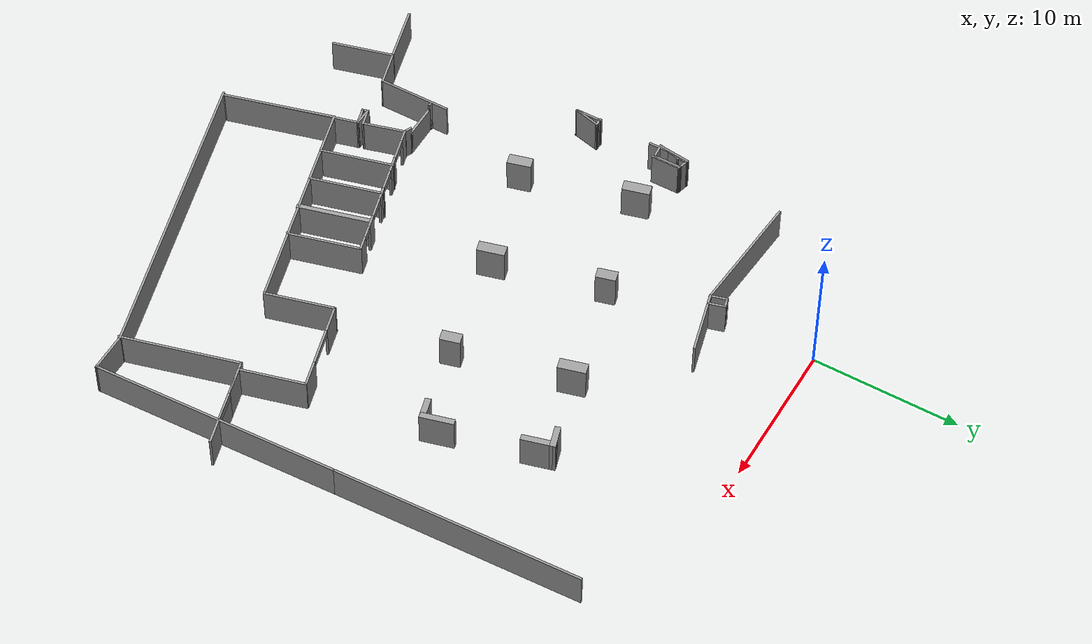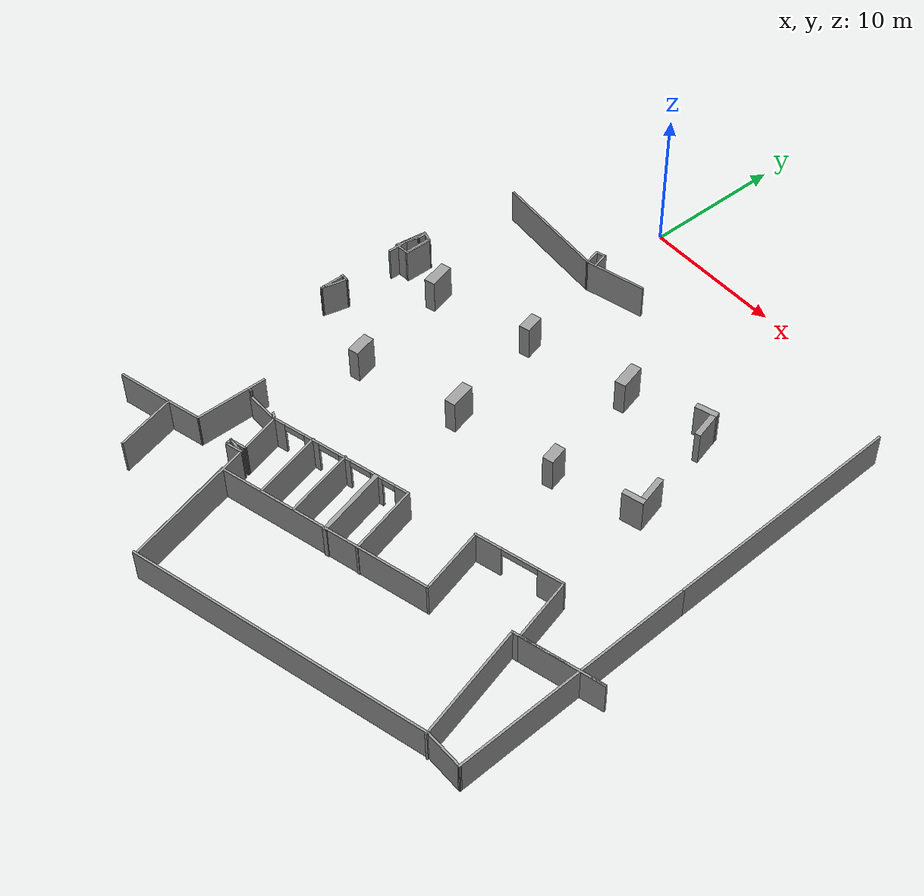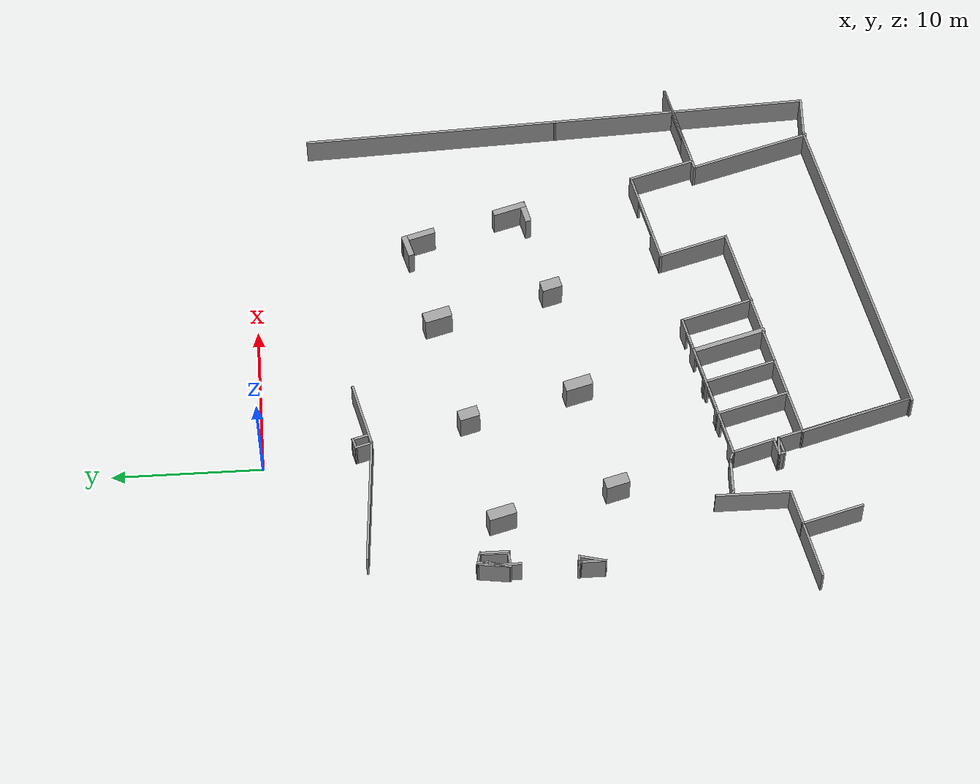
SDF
<sdf version="1.6">
 <model name="car_parking_underground_big_1">
  <pose>-9.36123 -7.37411 0 0 -0 0</pose>
  <link name="Door_12">
   <collision name="Door_12_Collision">
    <geometry><box><size>2.5 0.17 2</size></box></geometry>
    <pose>0 0 1 0 -0 0</pose>
   </collision>
   <visual name="Door_12_Visual">
    <pose>0 0 1 0 -0 0</pose>
    <geometry><box><size>2.5 0.17 2</size></box></geometry>
    <material>
     <script><uri>file://media/materials/scripts/gazebo.material</uri><name>Gazebo/Grey</name></script>
    </material>
   </visual>
   <pose>6.2291 -23.2173 0 0 -0 0</pose>
  </link>
  <link name="Wall_125">
   <collision name="Wall_125_Collision">
    <geometry><box><size>1.51034 0.4 2.5</size></box></geometry>
    <pose>0 0 1.25 0 -0 0</pose>
   </collision>
   <visual name="Wall_125_Visual">
    <pose>0 0 1.25 0 -0 0</pose>
    <geometry><box><size>1.51034 0.4 2.5</size></box></geometry>
    <material>
     <script><uri>file://media/materials/scripts/gazebo.material</uri><name>Gazebo/Grey</name></script>
     <ambient>1 1 1 1</ambient>
    </material>
    <meta><layer>0</layer></meta>
   </visual>
   <pose>24.1368 -2.87782 0 0 -0 0.29248</pose>
  </link>
  <link name="Wall_126">
   <collision name="Wall_126_Collision">
    <geometry><box><size>2.25 0.4 2.5</size></box></geometry>
    <pose>0 0 1.25 0 -0 0</pose>
   </collision>
   <visual name="Wall_126_Visual">
    <pose>0 0 1.25 0 -0 0</pose>
    <geometry><box><size>2.25 0.4 2.5</size></box></geometry>
    <material>
     <script><uri>file://media/materials/scripts/gazebo.material</uri><name>Gazebo/Grey</name></script>
     <ambient>1 1 1 1</ambient>
    </material>
    <meta><layer>0</layer></meta>
   </visual>
   <pose>24.9078 -3.61123 0 0 -0 -1.309</pose>
  </link>
  <link name="Wall_129">
   <collision name="Wall_129_Collision">
    <geometry><box><size>2.25008 0.4 2.5</size></box></geometry>
    <pose>0 0 1.25 0 -0 0</pose>
   </collision>
   <visual name="Wall_129_Visual">
    <pose>0 0 1.25 0 -0 0</pose>
    <geometry><box><size>2.25008 0.4 2.5</size></box></geometry>
    <material>
     <script><uri>file://media/materials/scripts/gazebo.material</uri><name>Gazebo/Grey</name></script>
     <ambient>1 1 1 1</ambient>
    </material>
    <meta><layer>0</layer></meta>
   </visual>
   <pose>26.5537 -9.80539 0 0 -0 -1.30891</pose>
  </link>
  <link name="Wall_130">
   <collision name="Wall_130_Collision">
    <geometry><box><size>1.5001 0.4 2.5</size></box></geometry>
    <pose>0 0 1.25 0 -0 0</pose>
   </collision>
   <visual name="Wall_130_Visual">
    <pose>0 0 1.25 0 -0 0</pose>
    <geometry><box><size>1.5001 0.4 2.5</size></box></geometry>
    <material>
     <script><uri>file://media/materials/scripts/gazebo.material</uri><name>Gazebo/Grey</name></script>
     <ambient>1 1 1 1</ambient>
    </material>
    <meta><layer>0</layer></meta>
   </visual>
   <pose>26.2617 -10.8414 0 0 -0 -2.87964</pose>
  </link>
  <link name="Wall_132">
   <collision name="Wall_132_Collision">
    <geometry><box><size>1.84932 0.75 2.5</size></box></geometry>
    <pose>0 0 1.25 0 -0 0</pose>
   </collision>
   <visual name="Wall_132_Visual">
    <pose>0 0 1.25 0 -0 0</pose>
    <geometry><box><size>1.84932 0.75 2.5</size></box></geometry>
    <material>
     <script><uri>file://media/materials/scripts/gazebo.material</uri><name>Gazebo/Grey</name></script>
     <ambient>1 1 1 1</ambient>
    </material>
    <meta><layer>0</layer></meta>
   </visual>
   <pose>18.9252 -4.58189 0 0 -0 1.8321</pose>
  </link>
  <link name="Wall_134">
   <collision name="Wall_134_Collision">
    <geometry><box><size>1.35015 0.75 2.5</size></box></geometry>
    <pose>0 0 1.25 0 -0 0</pose>
   </collision>
   <visual name="Wall_134_Visual">
    <pose>0 0 1.25 0 -0 0</pose>
    <geometry><box><size>1.35015 0.75 2.5</size></box></geometry>
    <material>
     <script><uri>file://media/materials/scripts/gazebo.material</uri><name>Gazebo/Grey</name></script>
     <ambient>1 1 1 1</ambient>
    </material>
    <meta><layer>0</layer></meta>
   </visual>
   <pose>20.7487 -12.2459 0 0 -0 1.83194</pose>
  </link>
  <link name="Wall_136">
   <collision name="Wall_136_Collision">
    <geometry><box><size>1.8504 0.75 2.5</size></box></geometry>
    <pose>0 0 1.25 0 -0 0</pose>
   </collision>
   <visual name="Wall_136_Visual">
    <pose>0 0 1.25 0 -0 0</pose>
    <geometry><box><size>1.8504 0.75 2.5</size></box></geometry>
    <material>
     <script><uri>file://media/materials/scripts/gazebo.material</uri><name>Gazebo/Grey</name></script>
     <ambient>1 1 1 1</ambient>
    </material>
    <meta><layer>0</layer></meta>
   </visual>
   <pose>13.4057 -13.5944 0 0 -0 -1.30885</pose>
  </link>
  <link name="Wall_138">
   <collision name="Wall_138_Collision">
    <geometry><box><size>1.35061 0.75 2.5</size></box></geometry>
    <pose>0 0 1.25 0 -0 0</pose>
   </collision>
   <visual name="Wall_138_Visual">
    <pose>0 0 1.25 0 -0 0</pose>
    <geometry><box><size>1.35061 0.75 2.5</size></box></geometry>
    <material>
     <script><uri>file://media/materials/scripts/gazebo.material</uri><name>Gazebo/Grey</name></script>
     <ambient>1 1 1 1</ambient>
    </material>
    <meta><layer>0</layer></meta>
   </visual>
   <pose>11.6025 -6.26525 0 0 -0 1.83354</pose>
  </link>
  <link name="Wall_140">
   <collision name="Wall_140_Collision">
    <geometry><box><size>1.85027 0.75 2.5</size></box></geometry>
    <pose>0 0 1.25 0 -0 0</pose>
   </collision>
   <visual name="Wall_140_Visual">
    <pose>0 0 1.25 0 -0 0</pose>
    <geometry><box><size>1.85027 0.75 2.5</size></box></geometry>
    <material>
     <script><uri>file://media/materials/scripts/gazebo.material</uri><name>Gazebo/Grey</name></script>
     <ambient>1 1 1 1</ambient>
    </material>
    <meta><layer>0</layer></meta>
   </visual>
   <pose>4.43473 -8.03639 0 0 -0 -1.30885</pose>
  </link>
  <link name="Wall_142">
   <collision name="Wall_142_Collision">
    <geometry><box><size>0.75 0.15 2.5</size></box></geometry>
    <pose>0 0 1.25 0 -0 0</pose>
   </collision>
   <visual name="Wall_142_Visual">
    <pose>0 0 1.25 0 -0 0</pose>
    <geometry><box><size>0.75 0.15 2.5</size></box></geometry>
    <material>
     <script><uri>file://media/materials/scripts/gazebo.material</uri><name>Gazebo/Grey</name></script>
     <ambient>1 1 1 1</ambient>
    </material>
    <meta><layer>0</layer></meta>
   </visual>
   <pose>0.950509 -6.60902 0 0 -0 -1.5708</pose>
  </link>
  <link name="Wall_143">
   <collision name="Wall_143_Collision">
    <geometry><box><size>1 0.15 2.5</size></box></geometry>
    <pose>0 0 1.25 0 -0 0</pose>
   </collision>
   <visual name="Wall_143_Visual">
    <pose>0 0 1.25 0 -0 0</pose>
    <geometry><box><size>1 0.15 2.5</size></box></geometry>
    <material>
     <script><uri>file://media/materials/scripts/gazebo.material</uri><name>Gazebo/Grey</name></script>
     <ambient>1 1 1 1</ambient>
    </material>
    <meta><layer>0</layer></meta>
   </visual>
   <pose>0.840511 -7.31954 0 0 -0 -1.8326</pose>
  </link>
  <link name="Wall_144">
   <collision name="Wall_144_Collision">
    <geometry><box><size>1.5 0.15 2.5</size></box></geometry>
    <pose>0 0 1.25 0 -0 0</pose>
   </collision>
   <visual name="Wall_144_Visual">
    <pose>0 0 1.25 0 -0 0</pose>
    <geometry><box><size>1.5 0.15 2.5</size></box></geometry>
    <material>
     <script><uri>file://media/materials/scripts/gazebo.material</uri><name>Gazebo/Grey</name></script>
     <ambient>1 1 1 1</ambient>
    </material>
    <meta><layer>0</layer></meta>
   </visual>
   <pose>0.730513 -8.40506 0 0 -0 -1.5708</pose>
  </link>
  <link name="Wall_152">
   <collision name="Wall_152_Collision">
    <geometry><box><size>1.75 0.15 2.5</size></box></geometry>
    <pose>0 0 1.25 0 -0 0</pose>
   </collision>
   <visual name="Wall_152_Visual">
    <pose>0 0 1.25 0 -0 0</pose>
    <geometry><box><size>1.75 0.15 2.5</size></box></geometry>
    <material>
     <script><uri>file://media/materials/scripts/gazebo.material</uri><name>Gazebo/Grey</name></script>
     <ambient>1 1 1 1</ambient>
    </material>
    <meta><layer>0</layer></meta>
   </visual>
   <pose>0.629189 -13.7667 0 0 -0 1.5708</pose>
  </link>
  <link name="Wall_153">
   <collision name="Wall_153_Collision">
    <geometry><box><size>0.25 0.15 2.5</size></box></geometry>
    <pose>0 0 1.25 0 -0 0</pose>
   </collision>
   <visual name="Wall_153_Visual">
    <pose>0 0 1.25 0 -0 0</pose>
    <geometry><box><size>0.25 0.15 2.5</size></box></geometry>
    <material>
     <script><uri>file://media/materials/scripts/gazebo.material</uri><name>Gazebo/Grey</name></script>
     <ambient>1 1 1 1</ambient>
    </material>
    <meta><layer>0</layer></meta>
   </visual>
   <pose>0.654189 -12.9234 0 0 -0 1.0472</pose>
  </link>
  <link name="Wall_154">
   <collision name="Wall_154_Collision">
    <geometry><box><size>0.25 0.15 2.5</size></box></geometry>
    <pose>0 0 1.25 0 -0 0</pose>
   </collision>
   <visual name="Wall_154_Visual">
    <pose>0 0 1.25 0 -0 0</pose>
    <geometry><box><size>0.25 0.15 2.5</size></box></geometry>
    <material>
     <script><uri>file://media/materials/scripts/gazebo.material</uri><name>Gazebo/Grey</name></script>
     <ambient>1 1 1 1</ambient>
    </material>
    <meta><layer>0</layer></meta>
   </visual>
   <pose>0.630893 -12.8672 0 0 -0 2.87979</pose>
  </link>
  <link name="Wall_157">
   <collision name="Wall_157_Collision">
    <geometry><box><size>2.27727 0.15 2.5</size></box></geometry>
    <pose>0 0 1.25 0 -0 0</pose>
   </collision>
   <visual name="Wall_157_Visual">
    <pose>0 0 1.25 0 -0 0</pose>
    <geometry><box><size>2.27727 0.15 2.5</size></box></geometry>
    <material>
     <script><uri>file://media/materials/scripts/gazebo.material</uri><name>Gazebo/Grey</name></script>
     <ambient>1 1 1 1</ambient>
    </material>
    <meta><layer>0</layer></meta>
   </visual>
   <pose>0.766553 -7.35663 0 0 -0 1.39697</pose>
  </link>
  <link name="Wall_158">
   <collision name="Wall_158_Collision">
    <geometry><box><size>0.75 0.15 2.5</size></box></geometry>
    <pose>0 0 1.25 0 -0 0</pose>
   </collision>
   <visual name="Wall_158_Visual">
    <pose>0 0 1.25 0 -0 0</pose>
    <geometry><box><size>0.75 0.15 2.5</size></box></geometry>
    <material>
     <script><uri>file://media/materials/scripts/gazebo.material</uri><name>Gazebo/Grey</name></script>
     <ambient>1 1 1 1</ambient>
    </material>
    <meta><layer>0</layer></meta>
   </visual>
   <pose>1.24029 -6.38666 0 0 -0 -0.261799</pose>
  </link>
  <link name="Wall_159">
   <collision name="Wall_159_Collision">
    <geometry><box><size>2 0.15 2.5</size></box></geometry>
    <pose>0 0 1.25 0 -0 0</pose>
   </collision>
   <visual name="Wall_159_Visual">
    <pose>0 0 1.25 0 -0 0</pose>
    <geometry><box><size>2 0.15 2.5</size></box></geometry>
    <material>
     <script><uri>file://media/materials/scripts/gazebo.material</uri><name>Gazebo/Grey</name></script>
     <ambient>1 1 1 1</ambient>
    </material>
    <meta><layer>0</layer></meta>
   </visual>
   <pose>1.53007 -7.38931 0 0 -0 -1.5708</pose>
  </link>
  <link name="Wall_160">
   <collision name="Wall_160_Collision">
    <geometry><box><size>1.10173 0.15 2.5</size></box></geometry>
    <pose>0 0 1.25 0 -0 0</pose>
   </collision>
   <visual name="Wall_160_Visual">
    <pose>0 0 1.25 0 -0 0</pose>
    <geometry><box><size>1.10173 0.15 2.5</size></box></geometry>
    <material>
     <script><uri>file://media/materials/scripts/gazebo.material</uri><name>Gazebo/Grey</name></script>
     <ambient>1 1 1 1</ambient>
    </material>
    <meta><layer>0</layer></meta>
   </visual>
   <pose>1.05633 -8.35927 0 0 -0 -3.04697</pose>
  </link>
  <link name="Wall_163">
   <collision name="Wall_163_Collision">
    <geometry><box><size>0.15 0.15 2.5</size></box></geometry>
    <pose>0 0 1.25 0 -0 0</pose>
   </collision>
   <visual name="Wall_163_Visual">
    <pose>0 0 1.25 0 -0 0</pose>
    <geometry><box><size>0.15 0.15 2.5</size></box></geometry>
    <material>
     <script><uri>file://media/materials/scripts/gazebo.material</uri><name>Gazebo/Grey</name></script>
     <ambient>1 1 1 1</ambient>
    </material>
    <meta><layer>0</layer></meta>
   </visual>
   <pose>0.679189 -12.8801 0 0 -0 0</pose>
  </link>
  <link name="Wall_164">
   <collision name="Wall_164_Collision">
    <geometry><box><size>0.5 0.15 2.5</size></box></geometry>
    <pose>0 0 1.25 0 -0 0</pose>
   </collision>
   <visual name="Wall_164_Visual">
    <pose>0 0 1.25 0 -0 0</pose>
    <geometry><box><size>0.5 0.15 2.5</size></box></geometry>
    <material>
     <script><uri>file://media/materials/scripts/gazebo.material</uri><name>Gazebo/Grey</name></script>
     <ambient>1 1 1 1</ambient>
    </material>
    <meta><layer>0</layer></meta>
   </visual>
   <pose>0.854189 -12.8801 0 0 -0 0</pose>
  </link>
  <link name="Wall_165">
   <collision name="Wall_165_Collision">
    <geometry><box><size>1.88339 0.15 2.5</size></box></geometry>
    <pose>0 0 1.25 0 -0 0</pose>
   </collision>
   <visual name="Wall_165_Visual">
    <pose>0 0 1.25 0 -0 0</pose>
    <geometry><box><size>1.88339 0.15 2.5</size></box></geometry>
    <material>
     <script><uri>file://media/materials/scripts/gazebo.material</uri><name>Gazebo/Grey</name></script>
     <ambient>1 1 1 1</ambient>
    </material>
    <meta><layer>0</layer></meta>
   </visual>
   <pose>0.829189 -13.7234 0 0 -0 -1.80366</pose>
  </link>
  <link name="Wall_167">
   <collision name="Wall_167_Collision">
    <geometry><box><size>0.25 0.15 2.5</size></box></geometry>
    <pose>0 0 1.25 0 -0 0</pose>
   </collision>
   <visual name="Wall_167_Visual">
    <pose>0 0 1.25 0 -0 0</pose>
    <geometry><box><size>0.25 0.15 2.5</size></box></geometry>
    <material>
     <script><uri>file://media/materials/scripts/gazebo.material</uri><name>Gazebo/Grey</name></script>
     <ambient>1 1 1 1</ambient>
    </material>
    <meta><layer>0</layer></meta>
   </visual>
   <pose>0.902213 -6.29608 0 0 -0 2.87979</pose>
  </link>
  <link name="Wall_168">
   <collision name="Wall_168_Collision">
    <geometry><box><size>2.28838 0.15 2.5</size></box></geometry>
    <pose>0 0 1.25 0 -0 0</pose>
   </collision>
   <visual name="Wall_168_Visual">
    <pose>0 0 1.25 0 -0 0</pose>
    <geometry><box><size>2.28838 0.15 2.5</size></box></geometry>
    <material>
     <script><uri>file://media/materials/scripts/gazebo.material</uri><name>Gazebo/Grey</name></script>
     <ambient>1 1 1 1</ambient>
    </material>
    <meta><layer>0</layer></meta>
   </visual>
   <pose>0.718256 -7.34368 0 0 -0 -1.69802</pose>
  </link>
  <link name="Wall_171">
   <collision name="Wall_171_Collision">
    <geometry><box><size>0.25 0.15 2.5</size></box></geometry>
    <pose>0 0 1.25 0 -0 0</pose>
   </collision>
   <visual name="Wall_171_Visual">
    <pose>0 0 1.25 0 -0 0</pose>
    <geometry><box><size>0.25 0.15 2.5</size></box></geometry>
    <material>
     <script><uri>file://media/materials/scripts/gazebo.material</uri><name>Gazebo/Grey</name></script>
     <ambient>1 1 1 1</ambient>
    </material>
    <meta><layer>0</layer></meta>
   </visual>
   <pose>1.57337 -6.48931 0 0 -0 -0.523599</pose>
  </link>
  <link name="Wall_172">
   <collision name="Wall_172_Collision">
    <geometry><box><size>2 0.15 2.5</size></box></geometry>
    <pose>0 0 1.25 0 -0 0</pose>
   </collision>
   <visual name="Wall_172_Visual">
    <pose>0 0 1.25 0 -0 0</pose>
    <geometry><box><size>2 0.15 2.5</size></box></geometry>
    <material>
     <script><uri>file://media/materials/scripts/gazebo.material</uri><name>Gazebo/Grey</name></script>
     <ambient>1 1 1 1</ambient>
    </material>
    <meta><layer>0</layer></meta>
   </visual>
   <pose>1.61667 -7.43931 0 0 -0 -1.5708</pose>
  </link>
  <link name="Wall_174">
   <collision name="Wall_174_Collision">
    <geometry><box><size>1.59944 0.75 2.5</size></box></geometry>
    <pose>0 0 1.25 0 -0 0</pose>
   </collision>
   <visual name="Wall_174_Visual">
    <pose>0 0 1.25 0 -0 0</pose>
    <geometry><box><size>1.59944 0.75 2.5</size></box></geometry>
    <material>
     <script><uri>file://media/materials/scripts/gazebo.material</uri><name>Gazebo/Grey</name></script>
     <ambient>1 1 1 1</ambient>
    </material>
    <meta><layer>0</layer></meta>
   </visual>
   <pose>6.23223 -15.6554 0 0 -0 -1.30898</pose>
  </link>
  <link name="Wall_26">
   <collision name="Wall_26_Collision">
    <geometry><box><size>8.36661 0.15 2.5</size></box></geometry>
    <pose>0 0 1.25 0 -0 0</pose>
   </collision>
   <visual name="Wall_26_Visual">
    <pose>0 0 1.25 0 -0 0</pose>
    <geometry><box><size>8.36661 0.15 2.5</size></box></geometry>
    <material>
     <script><uri>file://media/materials/scripts/gazebo.material</uri><name>Gazebo/Grey</name></script>
     <ambient>1 1 1 1</ambient>
    </material>
    <meta><layer>0</layer></meta>
   </visual>
   <pose>5.74294 0.498476 0 0 -0 -0.077832</pose>
  </link>
  <link name="Wall_27">
   <collision name="Wall_27_Collision">
    <geometry><box><size>4.35351 0.15 2.5</size></box></geometry>
    <pose>0 0 1.25 0 -0 0</pose>
   </collision>
   <visual name="Wall_27_Visual">
    <pose>0 0 1.25 0 -0 0</pose>
    <geometry><box><size>4.35351 0.15 2.5</size></box></geometry>
    <material>
     <script><uri>file://media/materials/scripts/gazebo.material</uri><name>Gazebo/Grey</name></script>
     <ambient>1 1 1 1</ambient>
    </material>
    <meta><layer>0</layer></meta>
   </visual>
   <pose>11.8725 0.70962 0 0 -0 0.255207</pose>
  </link>
  <link name="Wall_465">
   <collision name="Wall_465_Collision">
    <geometry><box><size>0.5 0.15 2.5</size></box></geometry>
    <pose>0 0 1.25 0 -0 0</pose>
   </collision>
   <visual name="Wall_465_Visual">
    <pose>0 0 1.25 0 -0 0</pose>
    <geometry><box><size>0.5 0.15 2.5</size></box></geometry>
    <material>
     <script><uri>file://media/materials/scripts/gazebo.material</uri><name>Gazebo/Grey</name></script>
     <ambient>1 1 1 1</ambient>
    </material>
    <meta><layer>0</layer></meta>
   </visual>
   <pose>7.57373 -26.5683 0 0 -0 -1.309</pose>
  </link>
  <link name="Wall_466">
   <collision name="Wall_466_Collision">
    <geometry><box><size>1.25 0.15 2.5</size></box></geometry>
    <pose>0 0 1.25 0 -0 0</pose>
   </collision>
   <visual name="Wall_466_Visual">
    <pose>0 0 1.25 0 -0 0</pose>
    <geometry><box><size>1.25 0.15 2.5</size></box></geometry>
    <material>
     <script><uri>file://media/materials/scripts/gazebo.material</uri><name>Gazebo/Grey</name></script>
     <ambient>1 1 1 1</ambient>
    </material>
    <meta><layer>0</layer></meta>
   </visual>
   <pose>8.15028 -26.595 0 0 -0 0.261799</pose>
  </link>
  <link name="Wall_58">
   <pose>25.3947 -18.9136 0 0 -0 0.261799</pose>
   <visual name="Wall_58_Visual_0">
    <pose>-2.17076 0 1.25 0 -0 0</pose>
    <geometry><box><size>1.90848 0.15 2.5</size></box></geometry>
    <material>
     <script><uri>file://media/materials/scripts/gazebo.material</uri><name>Gazebo/Grey</name></script>
     <ambient>1 1 1 1</ambient>
    </material>
    <meta><layer>0</layer></meta>
   </visual>
   <collision name="Wall_58_Collision_0">
    <geometry><box><size>1.90848 0.15 2.5</size></box></geometry>
    <pose>-2.17076 0 1.25 0 -0 0</pose>
   </collision>
   <visual name="Wall_58_Visual_1">
    <pose>2.20424 0 1.25 0 -0 0</pose>
    <geometry><box><size>1.84152 0.15 2.5</size></box></geometry>
    <material>
     <script><uri>file://media/materials/scripts/gazebo.material</uri><name>Gazebo/Grey</name></script>
     <ambient>1 1 1 1</ambient>
    </material>
    <meta><layer>0</layer></meta>
   </visual>
   <collision name="Wall_58_Collision_1">
    <geometry><box><size>1.84152 0.15 2.5</size></box></geometry>
    <pose>2.20424 0 1.25 0 -0 0</pose>
   </collision>
   <visual name="Wall_58_Visual_2">
    <pose>0.03348 0 2.25 0 -0 0</pose>
    <geometry><box><size>2.5 0.15 0.5</size></box></geometry>
    <material>
     <script><uri>file://media/materials/scripts/gazebo.material</uri><name>Gazebo/Grey</name></script>
     <ambient>1 1 1 1</ambient>
    </material>
    <meta><layer>0</layer></meta>
   </visual>
   <collision name="Wall_58_Collision_2">
    <geometry><box><size>2.5 0.15 0.5</size></box></geometry>
    <pose>0.03348 0 2.25 0 -0 0</pose>
   </collision>
  </link>
  <link name="Wall_586">
   <collision name="Wall_586_Collision">
    <geometry><box><size>1.23523 0.15 2.5</size></box></geometry>
    <pose>0 0 1.25 0 -0 0</pose>
   </collision>
   <visual name="Wall_586_Visual">
    <pose>0 0 1.25 0 -0 0</pose>
    <geometry><box><size>1.23523 0.15 2.5</size></box></geometry>
    <material>
     <script><uri>file://media/materials/scripts/gazebo.material</uri><name>Gazebo/Grey</name></script>
     <ambient>1 1 1 1</ambient>
    </material>
    <meta><layer>0</layer></meta>
   </visual>
   <pose>9.69645 0.702652 0 0 -0 1.83624</pose>
  </link>
  <link name="Wall_587">
   <collision name="Wall_587_Collision">
    <geometry><box><size>0.75 0.15 2.5</size></box></geometry>
    <pose>0 0 1.25 0 -0 0</pose>
   </collision>
   <visual name="Wall_587_Visual">
    <pose>0 0 1.25 0 -0 0</pose>
    <geometry><box><size>0.75 0.15 2.5</size></box></geometry>
    <material>
     <script><uri>file://media/materials/scripts/gazebo.material</uri><name>Gazebo/Grey</name></script>
     <ambient>1 1 1 1</ambient>
    </material>
    <meta><layer>0</layer></meta>
   </visual>
   <pose>9.84388 1.30391 0 0 -0 0.261799</pose>
  </link>
  <link name="Wall_588">
   <collision name="Wall_588_Collision">
    <geometry><box><size>1.25 0.15 2.5</size></box></geometry>
    <pose>0 0 1.25 0 -0 0</pose>
   </collision>
   <visual name="Wall_588_Visual">
    <pose>0 0 1.25 0 -0 0</pose>
    <geometry><box><size>1.25 0.15 2.5</size></box></geometry>
    <material>
     <script><uri>file://media/materials/scripts/gazebo.material</uri><name>Gazebo/Grey</name></script>
     <ambient>1 1 1 1</ambient>
    </material>
    <meta><layer>0</layer></meta>
   </visual>
   <pose>10.276 0.865592 0 0 -0 -1.309</pose>
  </link>
  <link name="Wall_59">
   <collision name="Wall_59_Collision">
    <geometry><box><size>4.5 0.15 2.5</size></box></geometry>
    <pose>0 0 1.25 0 -0 0</pose>
   </collision>
   <visual name="Wall_59_Visual">
    <pose>0 0 1.25 0 -0 0</pose>
    <geometry><box><size>4.5 0.15 2.5</size></box></geometry>
    <material>
     <script><uri>file://media/materials/scripts/gazebo.material</uri><name>Gazebo/Grey</name></script>
     <ambient>1 1 1 1</ambient>
    </material>
    <meta><layer>0</layer></meta>
   </visual>
   <pose>28.9037 -20.2251 0 0 -0 -1.309</pose>
  </link>
  <link name="Wall_60">
   <collision name="Wall_60_Collision">
    <geometry><box><size>5.75 0.15 2.5</size></box></geometry>
    <pose>0 0 1.25 0 -0 0</pose>
   </collision>
   <visual name="Wall_60_Visual">
    <pose>0 0 1.25 0 -0 0</pose>
    <geometry><box><size>5.75 0.15 2.5</size></box></geometry>
    <material>
     <script><uri>file://media/materials/scripts/gazebo.material</uri><name>Gazebo/Grey</name></script>
     <ambient>1 1 1 1</ambient>
    </material>
    <meta><layer>0</layer></meta>
   </visual>
   <pose>32.1712 -21.6013 0 0 -0 0.261799</pose>
  </link>
  <link name="Wall_61">
   <pose>31.9297 -21.666 0 0 -0 -2.87979</pose>
   <visual name="Wall_61_Visual_0">
    <pose>-2.23536 0 1.25 0 -0 0</pose>
    <geometry><box><size>1.77929 0.15 2.5</size></box></geometry>
    <material>
     <script><uri>file://media/materials/scripts/gazebo.material</uri><name>Gazebo/Grey</name></script>
     <ambient>1 1 1 1</ambient>
    </material>
    <meta><layer>0</layer></meta>
   </visual>
   <collision name="Wall_61_Collision_0">
    <geometry><box><size>1.77929 0.15 2.5</size></box></geometry>
    <pose>-2.23536 0 1.25 0 -0 0</pose>
   </collision>
   <visual name="Wall_61_Visual_1">
    <pose>1.88964 0 1.25 0 -0 0</pose>
    <geometry><box><size>2.47072 0.15 2.5</size></box></geometry>
    <material>
     <script><uri>file://media/materials/scripts/gazebo.material</uri><name>Gazebo/Grey</name></script>
     <ambient>1 1 1 1</ambient>
    </material>
    <meta><layer>0</layer></meta>
   </visual>
   <collision name="Wall_61_Collision_1">
    <geometry><box><size>2.47072 0.15 2.5</size></box></geometry>
    <pose>1.88964 0 1.25 0 -0 0</pose>
   </collision>
   <visual name="Wall_61_Visual_2">
    <pose>-0.345715 0 2.25 0 -0 0</pose>
    <geometry><box><size>2 0.15 0.5</size></box></geometry>
    <material>
     <script><uri>file://media/materials/scripts/gazebo.material</uri><name>Gazebo/Grey</name></script>
     <ambient>1 1 1 1</ambient>
    </material>
    <meta><layer>0</layer></meta>
   </visual>
   <collision name="Wall_61_Collision_2">
    <geometry><box><size>2 0.15 0.5</size></box></geometry>
    <pose>-0.345715 0 2.25 0 -0 0</pose>
   </collision>
  </link>
  <link name="Wall_62">
   <collision name="Wall_62_Collision">
    <geometry><box><size>8 0.15 2.5</size></box></geometry>
    <pose>0 0 1.25 0 -0 0</pose>
   </collision>
   <visual name="Wall_62_Visual">
    <pose>0 0 1.25 0 -0 0</pose>
    <geometry><box><size>8 0.15 2.5</size></box></geometry>
    <material>
     <script><uri>file://media/materials/scripts/gazebo.material</uri><name>Gazebo/Grey</name></script>
     <ambient>1 1 1 1</ambient>
    </material>
    <meta><layer>0</layer></meta>
   </visual>
   <pose>29.9995 -26.2467 0 0 -0 -1.309</pose>
  </link>
  <link name="Wall_63">
   <collision name="Wall_63_Collision">
    <geometry><box><size>0.25 0.15 2.5</size></box></geometry>
    <pose>0 0 1.25 0 -0 0</pose>
   </collision>
   <visual name="Wall_63_Visual">
    <pose>0 0 1.25 0 -0 0</pose>
    <geometry><box><size>0.25 0.15 2.5</size></box></geometry>
    <material>
     <script><uri>file://media/materials/scripts/gazebo.material</uri><name>Gazebo/Grey</name></script>
     <ambient>1 1 1 1</ambient>
    </material>
    <meta><layer>0</layer></meta>
   </visual>
   <pose>31.0283 -30.0862 0 0 -0 -1.309</pose>
  </link>
  <link name="Wall_649">
   <collision name="Wall_649_Collision">
    <geometry><box><size>16.9273 0.15 2.5</size></box></geometry>
    <pose>0 0 1.25 0 -0 0</pose>
   </collision>
   <visual name="Wall_649_Visual">
    <pose>0 0 1.25 0 -0 0</pose>
    <geometry><box><size>16.9273 0.15 2.5</size></box></geometry>
    <material>
     <script><uri>file://media/materials/scripts/gazebo.material</uri><name>Gazebo/Grey</name></script>
     <ambient>1 1 1 1</ambient>
    </material>
    <meta><layer>0</layer></meta>
   </visual>
   <pose>32.6467 -4.87603 0 0 -0 -1.53222</pose>
  </link>
  <link name="Wall_65">
   <collision name="Wall_65_Collision">
    <geometry><box><size>4.75 0.15 2.5</size></box></geometry>
    <pose>0 0 1.25 0 -0 0</pose>
   </collision>
   <visual name="Wall_65_Visual">
    <pose>0 0 1.25 0 -0 0</pose>
    <geometry><box><size>4.75 0.15 2.5</size></box></geometry>
    <material>
     <script><uri>file://media/materials/scripts/gazebo.material</uri><name>Gazebo/Grey</name></script>
     <ambient>1 1 1 1</ambient>
    </material>
    <meta><layer>0</layer></meta>
   </visual>
   <pose>23.0439 -21.9246 0 0 -0 -1.309</pose>
  </link>
  <link name="Wall_650">
   <collision name="Wall_650_Collision">
    <geometry><box><size>16.9366 0.15 2.5</size></box></geometry>
    <pose>0 0 1.25 0 -0 0</pose>
   </collision>
   <visual name="Wall_650_Visual">
    <pose>0 0 1.25 0 -0 0</pose>
    <geometry><box><size>16.9366 0.15 2.5</size></box></geometry>
    <material>
     <script><uri>file://media/materials/scripts/gazebo.material</uri><name>Gazebo/Grey</name></script>
     <ambient>1 1 1 1</ambient>
    </material>
    <meta><layer>0</layer></meta>
   </visual>
   <pose>33.3199 -21.6444 0 0 -0 -1.52913</pose>
  </link>
  <link name="Wall_654">
   <collision name="Wall_654_Collision">
    <geometry><box><size>21 0.15 2.5</size></box></geometry>
    <pose>0 0 1.25 0 -0 0</pose>
   </collision>
   <visual name="Wall_654_Visual">
    <pose>0 0 1.25 0 -0 0</pose>
    <geometry><box><size>21 0.15 2.5</size></box></geometry>
    <material>
     <script><uri>file://media/materials/scripts/gazebo.material</uri><name>Gazebo/Grey</name></script>
     <ambient>1 1 1 1</ambient>
    </material>
    <meta><layer>0</layer></meta>
   </visual>
   <pose>20.9998 -32.7286 0 0 -0 0.261799</pose>
  </link>
  <link name="Wall_655">
   <collision name="Wall_655_Collision">
    <geometry><box><size>2.75 0.15 2.5</size></box></geometry>
    <pose>0 0 1.25 0 -0 0</pose>
   </collision>
   <visual name="Wall_655_Visual">
    <pose>0 0 1.25 0 -0 0</pose>
    <geometry><box><size>2.75 0.15 2.5</size></box></geometry>
    <material>
     <script><uri>file://media/materials/scripts/gazebo.material</uri><name>Gazebo/Grey</name></script>
     <ambient>1 1 1 1</ambient>
    </material>
    <meta><layer>0</layer></meta>
   </visual>
   <pose>32.3695 -30.0304 0 0 -0 0</pose>
  </link>
  <link name="Wall_657">
   <collision name="Wall_657_Collision">
    <geometry><box><size>0.607886 0.15 2.5</size></box></geometry>
    <pose>0 0 1.25 0 -0 0</pose>
   </collision>
   <visual name="Wall_657_Visual">
    <pose>0 0 1.25 0 -0 0</pose>
    <geometry><box><size>0.607886 0.15 2.5</size></box></geometry>
    <material>
     <script><uri>file://media/materials/scripts/gazebo.material</uri><name>Gazebo/Grey</name></script>
     <ambient>1 1 1 1</ambient>
    </material>
    <meta><layer>0</layer></meta>
   </visual>
   <pose>7.61724 -23.3111 0 0 -0 -0.422049</pose>
  </link>
  <link name="Wall_659">
   <collision name="Wall_659_Collision">
    <geometry><box><size>0.25 0.15 2.5</size></box></geometry>
    <pose>0 0 1.25 0 -0 0</pose>
   </collision>
   <visual name="Wall_659_Visual">
    <pose>0 0 1.25 0 -0 0</pose>
    <geometry><box><size>0.25 0.15 2.5</size></box></geometry>
    <material>
     <script><uri>file://media/materials/scripts/gazebo.material</uri><name>Gazebo/Grey</name></script>
     <ambient>1 1 1 1</ambient>
    </material>
    <meta><layer>0</layer></meta>
   </visual>
   <pose>5.00152 -23.1808 0 0 -0 2.87979</pose>
  </link>
  <link name="Wall_66">
   <collision name="Wall_66_Collision">
    <geometry><box><size>15.25 0.15 2.5</size></box></geometry>
    <pose>0 0 1.25 0 -0 0</pose>
   </collision>
   <visual name="Wall_66_Visual">
    <pose>0 0 1.25 0 -0 0</pose>
    <geometry><box><size>15.25 0.15 2.5</size></box></geometry>
    <material>
     <script><uri>file://media/materials/scripts/gazebo.material</uri><name>Gazebo/Grey</name></script>
     <ambient>1 1 1 1</ambient>
    </material>
    <meta><layer>0</layer></meta>
   </visual>
   <pose>16.3464 -26.1003 0 0 -0 -2.87979</pose>
  </link>
  <link name="Wall_660">
   <collision name="Wall_660_Collision">
    <geometry><box><size>0.25 0.15 2.5</size></box></geometry>
    <pose>0 0 1.25 0 -0 0</pose>
   </collision>
   <visual name="Wall_660_Visual">
    <pose>0 0 1.25 0 -0 0</pose>
    <geometry><box><size>0.25 0.15 2.5</size></box></geometry>
    <material>
     <script><uri>file://media/materials/scripts/gazebo.material</uri><name>Gazebo/Grey</name></script>
     <ambient>1 1 1 1</ambient>
    </material>
    <meta><layer>0</layer></meta>
   </visual>
   <pose>5.00152 -23.1808 0 0 -0 -0.261799</pose>
  </link>
  <link name="Wall_662">
   <collision name="Wall_662_Collision">
    <geometry><box><size>5 0.15 2.5</size></box></geometry>
    <pose>0 0 1.25 0 -0 0</pose>
   </collision>
   <visual name="Wall_662_Visual">
    <pose>0 0 1.25 0 -0 0</pose>
    <geometry><box><size>5 0.15 2.5</size></box></geometry>
    <material>
     <script><uri>file://media/materials/scripts/gazebo.material</uri><name>Gazebo/Grey</name></script>
     <ambient>1 1 1 1</ambient>
    </material>
    <meta><layer>0</layer></meta>
   </visual>
   <pose>11.2851 -24.9439 0 0 -0 -1.309</pose>
  </link>
  <link name="Wall_664">
   <collision name="Wall_664_Collision">
    <geometry><box><size>5 0.15 2.5</size></box></geometry>
    <pose>0 0 1.25 0 -0 0</pose>
   </collision>
   <visual name="Wall_664_Visual">
    <pose>0 0 1.25 0 -0 0</pose>
    <geometry><box><size>5 0.15 2.5</size></box></geometry>
    <material>
     <script><uri>file://media/materials/scripts/gazebo.material</uri><name>Gazebo/Grey</name></script>
     <ambient>1 1 1 1</ambient>
    </material>
    <meta><layer>0</layer></meta>
   </visual>
   <pose>13.6201 -24.2835 0 0 -0 -1.309</pose>
  </link>
  <link name="Wall_666">
   <collision name="Wall_666_Collision">
    <geometry><box><size>5 0.3 2.5</size></box></geometry>
    <pose>0 0 1.25 0 -0 0</pose>
   </collision>
   <visual name="Wall_666_Visual">
    <pose>0 0 1.25 0 -0 0</pose>
    <geometry><box><size>5 0.3 2.5</size></box></geometry>
    <material>
     <script><uri>file://media/materials/scripts/gazebo.material</uri><name>Gazebo/Grey</name></script>
     <ambient>1 1 1 1</ambient>
    </material>
    <meta><layer>0</layer></meta>
   </visual>
   <pose>15.9592 -23.7627 0 0 -0 -1.309</pose>
  </link>
  <link name="Wall_67">
   <collision name="Wall_67_Collision">
    <geometry><box><size>7.60665 0.15 2.5</size></box></geometry>
    <pose>0 0 1.25 0 -0 0</pose>
   </collision>
   <visual name="Wall_67_Visual">
    <pose>0 0 1.25 0 -0 0</pose>
    <geometry><box><size>7.60665 0.15 2.5</size></box></geometry>
    <material>
     <script><uri>file://media/materials/scripts/gazebo.material</uri><name>Gazebo/Grey</name></script>
     <ambient>1 1 1 1</ambient>
    </material>
    <meta><layer>0</layer></meta>
   </visual>
   <pose>10.0452 -31.6485 0 0 -0 -1.3016</pose>
  </link>
  <link name="Wall_68">
   <collision name="Wall_68_Collision">
    <geometry><box><size>9.25 0.15 2.5</size></box></geometry>
    <pose>0 0 1.25 0 -0 0</pose>
   </collision>
   <visual name="Wall_68_Visual">
    <pose>0 0 1.25 0 -0 0</pose>
    <geometry><box><size>9.25 0.15 2.5</size></box></geometry>
    <material>
     <script><uri>file://media/materials/scripts/gazebo.material</uri><name>Gazebo/Grey</name></script>
     <ambient>1 1 1 1</ambient>
    </material>
    <meta><layer>0</layer></meta>
   </visual>
   <pose>9.85917 -30.8476 0 0 -0 1.8326</pose>
  </link>
  <link name="Wall_69">
   <collision name="Wall_69_Collision">
    <geometry><box><size>1.30434 0.15 2.5</size></box></geometry>
    <pose>0 0 1.25 0 -0 0</pose>
   </collision>
   <visual name="Wall_69_Visual">
    <pose>0 0 1.25 0 -0 0</pose>
    <geometry><box><size>1.30434 0.15 2.5</size></box></geometry>
    <material>
     <script><uri>file://media/materials/scripts/gazebo.material</uri><name>Gazebo/Grey</name></script>
     <ambient>1 1 1 1</ambient>
    </material>
    <meta><layer>0</layer></meta>
   </visual>
   <pose>8.10499 -26.4259 0 0 -0 3.09534</pose>
  </link>
  <link name="Wall_70">
   <collision name="Wall_70_Collision">
    <geometry><box><size>1.25 0.15 2.5</size></box></geometry>
    <pose>0 0 1.25 0 -0 0</pose>
   </collision>
   <visual name="Wall_70_Visual">
    <pose>0 0 1.25 0 -0 0</pose>
    <geometry><box><size>1.25 0.15 2.5</size></box></geometry>
    <material>
     <script><uri>file://media/materials/scripts/gazebo.material</uri><name>Gazebo/Grey</name></script>
     <ambient>1 1 1 1</ambient>
    </material>
    <meta><layer>0</layer></meta>
   </visual>
   <pose>8.05969 -26.2569 0 0 -0 0.261799</pose>
  </link>
  <link name="Wall_704">
   <collision name="Wall_704_Collision">
    <geometry><box><size>3.9327 0.15 2.5</size></box></geometry>
    <pose>0 0 1.25 0 -0 0</pose>
   </collision>
   <visual name="Wall_704_Visual">
    <pose>0 0 1.25 0 -0 0</pose>
    <geometry><box><size>3.9327 0.15 2.5</size></box></geometry>
    <material>
     <script><uri>file://media/materials/scripts/gazebo.material</uri><name>Gazebo/Grey</name></script>
     <ambient>1 1 1 1</ambient>
    </material>
    <meta><layer>0</layer></meta>
   </visual>
   <pose>0.698873 -28.0014 0 0 -0 0.252608</pose>
  </link>
  <link name="Wall_71">
   <collision name="Wall_71_Collision">
    <geometry><box><size>2.96555 0.15 2.5</size></box></geometry>
    <pose>0 0 1.25 0 -0 0</pose>
   </collision>
   <visual name="Wall_71_Visual">
    <pose>0 0 1.25 0 -0 0</pose>
    <geometry><box><size>2.96555 0.15 2.5</size></box></geometry>
    <material>
     <script><uri>file://media/materials/scripts/gazebo.material</uri><name>Gazebo/Grey</name></script>
     <ambient>1 1 1 1</ambient>
    </material>
    <meta><layer>0</layer></meta>
   </visual>
   <pose>8.20852 -24.7597 0 0 -0 1.84591</pose>
  </link>
  <link name="Wall_72">
   <pose>12.704 -22.0978 0 0 -0 0.261799</pose>
   <visual name="Wall_72_Visual_0">
    <pose>-4.67337 0 1.25 0 -0 0</pose>
    <geometry><box><size>0.903265 0.15 2.5</size></box></geometry>
    <material>
     <script><uri>file://media/materials/scripts/gazebo.material</uri><name>Gazebo/Grey</name></script>
     <ambient>1 1 1 1</ambient>
    </material>
    <meta><layer>0</layer></meta>
   </visual>
   <collision name="Wall_72_Collision_0">
    <geometry><box><size>0.903265 0.15 2.5</size></box></geometry>
    <pose>-4.67337 0 1.25 0 -0 0</pose>
   </collision>
   <visual name="Wall_72_Visual_1">
    <pose>-2.16357 0 1.25 0 -0 0</pose>
    <geometry><box><size>1.11634 0.15 2.5</size></box></geometry>
    <material>
     <script><uri>file://media/materials/scripts/gazebo.material</uri><name>Gazebo/Grey</name></script>
     <ambient>1 1 1 1</ambient>
    </material>
    <meta><layer>0</layer></meta>
   </visual>
   <collision name="Wall_72_Collision_1">
    <geometry><box><size>1.11634 0.15 2.5</size></box></geometry>
    <pose>-2.16357 0 1.25 0 -0 0</pose>
   </collision>
   <visual name="Wall_72_Visual_2">
    <pose>0.340794 0 1.25 0 -0 0</pose>
    <geometry><box><size>0.892378 0.15 2.5</size></box></geometry>
    <material>
     <script><uri>file://media/materials/scripts/gazebo.material</uri><name>Gazebo/Grey</name></script>
     <ambient>1 1 1 1</ambient>
    </material>
    <meta><layer>0</layer></meta>
   </visual>
   <collision name="Wall_72_Collision_2">
    <geometry><box><size>0.892378 0.15 2.5</size></box></geometry>
    <pose>0.340794 0 1.25 0 -0 0</pose>
   </collision>
   <visual name="Wall_72_Visual_3">
    <pose>2.7287 0 1.25 0 -0 0</pose>
    <geometry><box><size>0.88343 0.15 2.5</size></box></geometry>
    <material>
     <script><uri>file://media/materials/scripts/gazebo.material</uri><name>Gazebo/Grey</name></script>
     <ambient>1 1 1 1</ambient>
    </material>
    <meta><layer>0</layer></meta>
   </visual>
   <collision name="Wall_72_Collision_3">
    <geometry><box><size>0.88343 0.15 2.5</size></box></geometry>
    <pose>2.7287 0 1.25 0 -0 0</pose>
   </collision>
   <visual name="Wall_72_Visual_4">
    <pose>4.59771 0 1.25 0 -0 0</pose>
    <geometry><box><size>1.05459 0.15 2.5</size></box></geometry>
    <material>
     <script><uri>file://media/materials/scripts/gazebo.material</uri><name>Gazebo/Grey</name></script>
     <ambient>1 1 1 1</ambient>
    </material>
    <meta><layer>0</layer></meta>
   </visual>
   <collision name="Wall_72_Collision_4">
    <geometry><box><size>1.05459 0.15 2.5</size></box></geometry>
    <pose>4.59771 0 1.25 0 -0 0</pose>
   </collision>
   <visual name="Wall_72_Visual_5">
    <pose>-3.47173 0 2.25 0 -0 0</pose>
    <geometry><box><size>1.5 0.15 0.5</size></box></geometry>
    <material>
     <script><uri>file://media/materials/scripts/gazebo.material</uri><name>Gazebo/Grey</name></script>
     <ambient>1 1 1 1</ambient>
    </material>
    <meta><layer>0</layer></meta>
   </visual>
   <collision name="Wall_72_Collision_5">
    <geometry><box><size>1.5 0.15 0.5</size></box></geometry>
    <pose>-3.47173 0 2.25 0 -0 0</pose>
   </collision>
   <visual name="Wall_72_Visual_6">
    <pose>-0.855395 0 2.25 0 -0 0</pose>
    <geometry><box><size>1.5 0.15 0.5</size></box></geometry>
    <material>
     <script><uri>file://media/materials/scripts/gazebo.material</uri><name>Gazebo/Grey</name></script>
     <ambient>1 1 1 1</ambient>
    </material>
    <meta><layer>0</layer></meta>
   </visual>
   <collision name="Wall_72_Collision_6">
    <geometry><box><size>1.5 0.15 0.5</size></box></geometry>
    <pose>-0.855395 0 2.25 0 -0 0</pose>
   </collision>
   <visual name="Wall_72_Visual_7">
    <pose>1.53698 0 2.25 0 -0 0</pose>
    <geometry><box><size>1.5 0.15 0.5</size></box></geometry>
    <material>
     <script><uri>file://media/materials/scripts/gazebo.material</uri><name>Gazebo/Grey</name></script>
     <ambient>1 1 1 1</ambient>
    </material>
    <meta><layer>0</layer></meta>
   </visual>
   <collision name="Wall_72_Collision_7">
    <geometry><box><size>1.5 0.15 0.5</size></box></geometry>
    <pose>1.53698 0 2.25 0 -0 0</pose>
   </collision>
   <visual name="Wall_72_Visual_8">
    <pose>3.62041 0 2.25 0 -0 0</pose>
    <geometry><box><size>0.9 0.15 0.5</size></box></geometry>
    <material>
     <script><uri>file://media/materials/scripts/gazebo.material</uri><name>Gazebo/Grey</name></script>
     <ambient>1 1 1 1</ambient>
    </material>
    <meta><layer>0</layer></meta>
   </visual>
   <collision name="Wall_72_Collision_8">
    <geometry><box><size>0.9 0.15 0.5</size></box></geometry>
    <pose>3.62041 0 2.25 0 -0 0</pose>
   </collision>
  </link>
  <link name="Wall_73">
   <collision name="Wall_73_Collision">
    <geometry><box><size>5 0.15 2.5</size></box></geometry>
    <pose>0 0 1.25 0 -0 0</pose>
   </collision>
   <visual name="Wall_73_Visual">
    <pose>0 0 1.25 0 -0 0</pose>
    <geometry><box><size>5 0.15 2.5</size></box></geometry>
    <material>
     <script><uri>file://media/materials/scripts/gazebo.material</uri><name>Gazebo/Grey</name></script>
     <ambient>1 1 1 1</ambient>
    </material>
    <meta><layer>0</layer></meta>
   </visual>
   <pose>18.2096 -23.1332 0 0 -0 -1.309</pose>
  </link>
  <link name="Wall_82">
   <collision name="Wall_82_Collision">
    <geometry><box><size>5 0.15 2.5</size></box></geometry>
    <pose>0 0 1.25 0 -0 0</pose>
   </collision>
   <visual name="Wall_82_Visual">
    <pose>0 0 1.25 0 -0 0</pose>
    <geometry><box><size>5 0.15 2.5</size></box></geometry>
    <material>
     <script><uri>file://media/materials/scripts/gazebo.material</uri><name>Gazebo/Grey</name></script>
     <ambient>1 1 1 1</ambient>
    </material>
    <meta><layer>0</layer></meta>
   </visual>
   <pose>4.80013 -24.4955 0 0 -0 -1.5708</pose>
  </link>
  <link name="Wall_83">
   <collision name="Wall_83_Collision">
    <geometry><box><size>2.5 0.15 2.5</size></box></geometry>
    <pose>0 0 1.25 0 -0 0</pose>
   </collision>
   <visual name="Wall_83_Visual">
    <pose>0 0 1.25 0 -0 0</pose>
    <geometry><box><size>2.5 0.15 2.5</size></box></geometry>
    <material>
     <script><uri>file://media/materials/scripts/gazebo.material</uri><name>Gazebo/Grey</name></script>
     <ambient>1 1 1 1</ambient>
    </material>
    <meta><layer>0</layer></meta>
   </visual>
   <pose>3.66516 -27.2246 0 0 -0 -2.87979</pose>
  </link>
  <link name="Wall_84">
   <collision name="Wall_84_Collision">
    <geometry><box><size>4.25 0.15 2.5</size></box></geometry>
    <pose>0 0 1.25 0 -0 0</pose>
   </collision>
   <visual name="Wall_84_Visual">
    <pose>0 0 1.25 0 -0 0</pose>
    <geometry><box><size>4.25 0.15 2.5</size></box></geometry>
    <material>
     <script><uri>file://media/materials/scripts/gazebo.material</uri><name>Gazebo/Grey</name></script>
     <ambient>1 1 1 1</ambient>
    </material>
    <meta><layer>0</layer></meta>
   </visual>
   <pose>3.06078 -29.5088 0 0 -0 -1.309</pose>
  </link>
  <static>1</static>
 </model>
</sdf>
